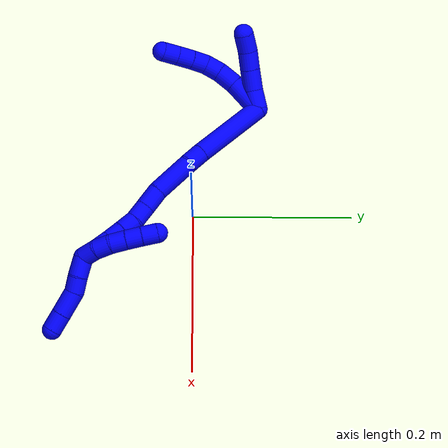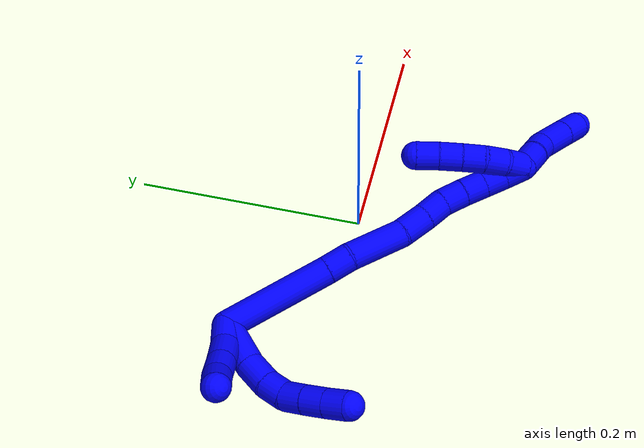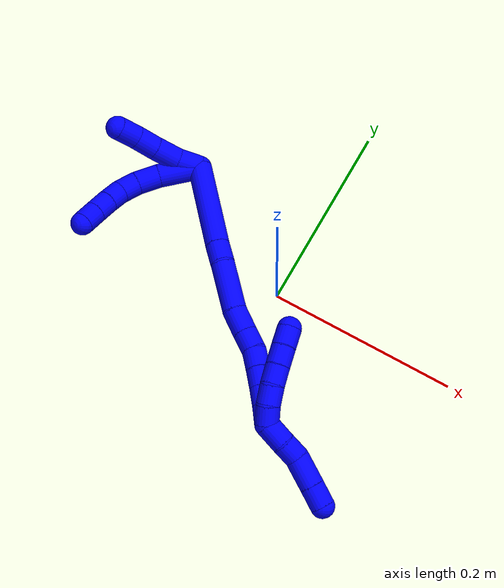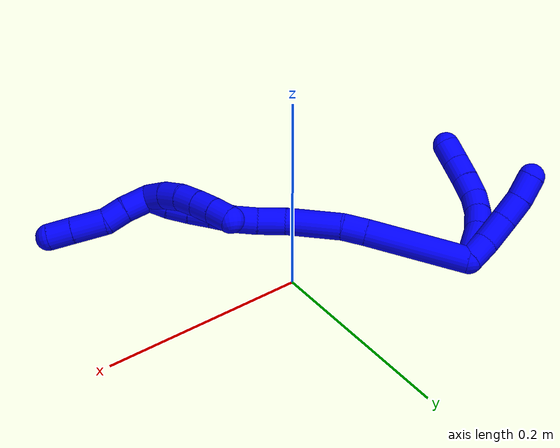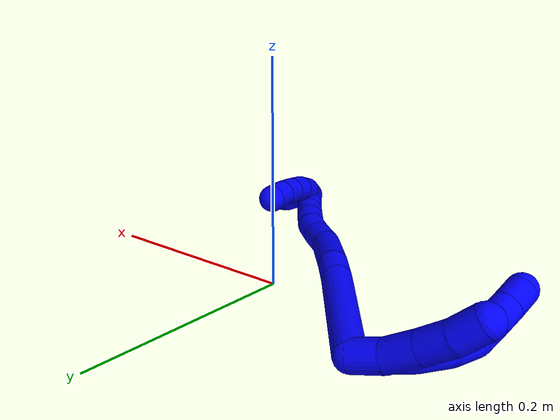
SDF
<sdf version="1.7">
 <world name="default">
  <model name="1">
   <static>0</static>
   <link name="1">
    <collision name="collision-cylinder-e_1_2_8">
     <pose>-0.015912 -0.004776 0.014608 0.316004 -0.802785 -0.135045</pose>
     <geometry><cylinder><radius>0.0125</radius><length>0.044245</length></cylinder></geometry>
     <surface>
      <friction><ode><mu>1.16</mu><mu2>1.16</mu2><slip1>0</slip1><slip2>0</slip2></ode></friction>
      <contact><ode><kp>1e+06</kp><kd>1</kd><max_vel>0</max_vel><min_depth>0.001</min_depth></ode></contact>
     </surface>
    </collision>
    <visual name="visual-cylinder-e_1_2_8">
     <pose>-0.015912 -0.004776 0.014608 0.316004 -0.802785 -0.135045</pose>
     <geometry><cylinder><radius>0.0125</radius><length>0.044245</length></cylinder></geometry>
     <material><ambient>0 0 1 1</ambient></material>
    </visual>
    <collision name="collision-cylinder-e_2_8_9">
     <pose>-0.03916 -0.013306 0.038534 0.382971 -0.630667 -0.126314</pose>
     <geometry><cylinder><radius>0.0125</radius><length>0.024878</length></cylinder></geometry>
     <surface>
      <friction><ode><mu>1.16</mu><mu2>1.16</mu2><slip1>0</slip1><slip2>0</slip2></ode></friction>
      <contact><ode><kp>1e+06</kp><kd>1</kd><max_vel>0</max_vel><min_depth>0.001</min_depth></ode></contact>
     </surface>
    </collision>
    <visual name="visual-cylinder-e_2_8_9">
     <pose>-0.03916 -0.013306 0.038534 0.382971 -0.630667 -0.126314</pose>
     <geometry><cylinder><radius>0.0125</radius><length>0.024878</length></cylinder></geometry>
     <material><ambient>0 0 1 1</ambient></material>
    </visual>
    <collision name="collision-cylinder-e_3_9_10">
     <pose>-0.05063 -0.020965 0.056376 0.429572 -0.415326 -0.091864</pose>
     <geometry><cylinder><radius>0.0125</radius><length>0.020494</length></cylinder></geometry>
     <surface>
      <friction><ode><mu>1.16</mu><mu2>1.16</mu2><slip1>0</slip1><slip2>0</slip2></ode></friction>
      <contact><ode><kp>1e+06</kp><kd>1</kd><max_vel>0</max_vel><min_depth>0.001</min_depth></ode></contact>
     </surface>
    </collision>
    <visual name="visual-cylinder-e_3_9_10">
     <pose>-0.05063 -0.020965 0.056376 0.429572 -0.415326 -0.091864</pose>
     <geometry><cylinder><radius>0.0125</radius><length>0.020494</length></cylinder></geometry>
     <material><ambient>0 0 1 1</ambient></material>
    </visual>
    <collision name="collision-cylinder-e_4_10_11">
     <pose>-0.055497 -0.028649 0.074183 0.386614 -0.072952 -0.014287</pose>
     <geometry><cylinder><radius>0.0125</radius><length>0.020099</length></cylinder></geometry>
     <surface>
      <friction><ode><mu>1.16</mu><mu2>1.16</mu2><slip1>0</slip1><slip2>0</slip2></ode></friction>
      <contact><ode><kp>1e+06</kp><kd>1</kd><max_vel>0</max_vel><min_depth>0.001</min_depth></ode></contact>
     </surface>
    </collision>
    <visual name="visual-cylinder-e_4_10_11">
     <pose>-0.055497 -0.028649 0.074183 0.386614 -0.072952 -0.014287</pose>
     <geometry><cylinder><radius>0.0125</radius><length>0.020099</length></cylinder></geometry>
     <material><ambient>0 0 1 1</ambient></material>
    </visual>
    <collision name="collision-cylinder-e_5_11_12">
     <pose>-0.056769 -0.036622 0.092645 0.42859 -0.053484 -0.011643</pose>
     <geometry><cylinder><radius>0.0125</radius><length>0.020213</length></cylinder></geometry>
     <surface>
      <friction><ode><mu>1.16</mu><mu2>1.16</mu2><slip1>0</slip1><slip2>0</slip2></ode></friction>
      <contact><ode><kp>1e+06</kp><kd>1</kd><max_vel>0</max_vel><min_depth>0.001</min_depth></ode></contact>
     </surface>
    </collision>
    <visual name="visual-cylinder-e_5_11_12">
     <pose>-0.056769 -0.036622 0.092645 0.42859 -0.053484 -0.011643</pose>
     <geometry><cylinder><radius>0.0125</radius><length>0.020213</length></cylinder></geometry>
     <material><ambient>0 0 1 1</ambient></material>
    </visual>
    <collision name="collision-cylinder-e_6_12_6">
     <pose>-0.057515 -0.04481 0.111029 0.409349 -0.020416 -0.004238</pose>
     <geometry><cylinder><radius>0.0125</radius><length>0.020071</length></cylinder></geometry>
     <surface>
      <friction><ode><mu>1.16</mu><mu2>1.16</mu2><slip1>0</slip1><slip2>0</slip2></ode></friction>
      <contact><ode><kp>1e+06</kp><kd>1</kd><max_vel>0</max_vel><min_depth>0.001</min_depth></ode></contact>
     </surface>
    </collision>
    <visual name="visual-cylinder-e_6_12_6">
     <pose>-0.057515 -0.04481 0.111029 0.409349 -0.020416 -0.004238</pose>
     <geometry><cylinder><radius>0.0125</radius><length>0.020071</length></cylinder></geometry>
     <material><ambient>0 0 1 1</ambient></material>
    </visual>
    <collision name="collision-cylinder-e_1_2_13">
     <pose>-0.009398 0.003687 0.007187 -0.473967 -0.860828 0.220874</pose>
     <geometry><cylinder><radius>0.0125</radius><length>0.024784</length></cylinder></geometry>
     <surface>
      <friction><ode><mu>1.16</mu><mu2>1.16</mu2><slip1>0</slip1><slip2>0</slip2></ode></friction>
      <contact><ode><kp>1e+06</kp><kd>1</kd><max_vel>0</max_vel><min_depth>0.001</min_depth></ode></contact>
     </surface>
    </collision>
    <visual name="visual-cylinder-e_1_2_13">
     <pose>-0.009398 0.003687 0.007187 -0.473967 -0.860828 0.220874</pose>
     <geometry><cylinder><radius>0.0125</radius><length>0.024784</length></cylinder></geometry>
     <material><ambient>0 0 1 1</ambient></material>
    </visual>
    <collision name="collision-cylinder-e_2_13_14">
     <pose>-0.026816 0.013936 0.02366 -0.615197 -0.614237 0.20083</pose>
     <geometry><cylinder><radius>0.0125</radius><length>0.02783</length></cylinder></geometry>
     <surface>
      <friction><ode><mu>1.16</mu><mu2>1.16</mu2><slip1>0</slip1><slip2>0</slip2></ode></friction>
      <contact><ode><kp>1e+06</kp><kd>1</kd><max_vel>0</max_vel><min_depth>0.001</min_depth></ode></contact>
     </surface>
    </collision>
    <visual name="visual-cylinder-e_2_13_14">
     <pose>-0.026816 0.013936 0.02366 -0.615197 -0.614237 0.20083</pose>
     <geometry><cylinder><radius>0.0125</radius><length>0.02783</length></cylinder></geometry>
     <material><ambient>0 0 1 1</ambient></material>
    </visual>
    <collision name="collision-cylinder-e_3_14_15">
     <pose>-0.04117 0.026561 0.041048 -0.642407 -0.559346 0.190539</pose>
     <geometry><cylinder><radius>0.0125</radius><length>0.023876</length></cylinder></geometry>
     <surface>
      <friction><ode><mu>1.16</mu><mu2>1.16</mu2><slip1>0</slip1><slip2>0</slip2></ode></friction>
      <contact><ode><kp>1e+06</kp><kd>1</kd><max_vel>0</max_vel><min_depth>0.001</min_depth></ode></contact>
     </surface>
    </collision>
    <visual name="visual-cylinder-e_3_14_15">
     <pose>-0.04117 0.026561 0.041048 -0.642407 -0.559346 0.190539</pose>
     <geometry><cylinder><radius>0.0125</radius><length>0.023876</length></cylinder></geometry>
     <material><ambient>0 0 1 1</ambient></material>
    </visual>
    <collision name="collision-cylinder-e_4_15_5">
     <pose>-0.052242 0.038118 0.058399 -0.536062 -0.414777 0.115447</pose>
     <geometry><cylinder><radius>0.0125</radius><length>0.02351</length></cylinder></geometry>
     <surface>
      <friction><ode><mu>1.16</mu><mu2>1.16</mu2><slip1>0</slip1><slip2>0</slip2></ode></friction>
      <contact><ode><kp>1e+06</kp><kd>1</kd><max_vel>0</max_vel><min_depth>0.001</min_depth></ode></contact>
     </surface>
    </collision>
    <visual name="visual-cylinder-e_4_15_5">
     <pose>-0.052242 0.038118 0.058399 -0.536062 -0.414777 0.115447</pose>
     <geometry><cylinder><radius>0.0125</radius><length>0.02351</length></cylinder></geometry>
     <material><ambient>0 0 1 1</ambient></material>
    </visual>
    <collision name="collision-cylinder-e_1_2_16">
     <pose>0.028837 -0.0329 0.020781 1.00742 0.637754 0.359967</pose>
     <geometry><cylinder><radius>0.0125</radius><length>0.096867</length></cylinder></geometry>
     <surface>
      <friction><ode><mu>1.16</mu><mu2>1.16</mu2><slip1>0</slip1><slip2>0</slip2></ode></friction>
      <contact><ode><kp>1e+06</kp><kd>1</kd><max_vel>0</max_vel><min_depth>0.001</min_depth></ode></contact>
     </surface>
    </collision>
    <visual name="visual-cylinder-e_1_2_16">
     <pose>0.028837 -0.0329 0.020781 1.00742 0.637754 0.359967</pose>
     <geometry><cylinder><radius>0.0125</radius><length>0.096867</length></cylinder></geometry>
     <material><ambient>0 0 1 1</ambient></material>
    </visual>
    <collision name="collision-cylinder-e_2_16_17">
     <pose>0.06464 -0.073272 0.046001 1.03483 0.675622 0.394644</pose>
     <geometry><cylinder><radius>0.0125</radius><length>0.022279</length></cylinder></geometry>
     <surface>
      <friction><ode><mu>1.16</mu><mu2>1.16</mu2><slip1>0</slip1><slip2>0</slip2></ode></friction>
      <contact><ode><kp>1e+06</kp><kd>1</kd><max_vel>0</max_vel><min_depth>0.001</min_depth></ode></contact>
     </surface>
    </collision>
    <visual name="visual-cylinder-e_2_16_17">
     <pose>0.06464 -0.073272 0.046001 1.03483 0.675622 0.394644</pose>
     <geometry><cylinder><radius>0.0125</radius><length>0.022279</length></cylinder></geometry>
     <material><ambient>0 0 1 1</ambient></material>
    </visual>
    <collision name="collision-cylinder-e_3_17_18">
     <pose>0.08564 -0.101373 0.057855 1.22573 0.569464 0.40596</pose>
     <geometry><cylinder><radius>0.0125</radius><length>0.052054</length></cylinder></geometry>
     <surface>
      <friction><ode><mu>1.16</mu><mu2>1.16</mu2><slip1>0</slip1><slip2>0</slip2></ode></friction>
      <contact><ode><kp>1e+06</kp><kd>1</kd><max_vel>0</max_vel><min_depth>0.001</min_depth></ode></contact>
     </surface>
    </collision>
    <visual name="visual-cylinder-e_3_17_18">
     <pose>0.08564 -0.101373 0.057855 1.22573 0.569464 0.40596</pose>
     <geometry><cylinder><radius>0.0125</radius><length>0.052054</length></cylinder></geometry>
     <material><ambient>0 0 1 1</ambient></material>
    </visual>
    <collision name="collision-cylinder-e_4_18_19">
     <pose>0.108608 -0.131469 0.067616 1.32785 0.741528 0.590535</pose>
     <geometry><cylinder><radius>0.0125</radius><length>0.026456</length></cylinder></geometry>
     <surface>
      <friction><ode><mu>1.16</mu><mu2>1.16</mu2><slip1>0</slip1><slip2>0</slip2></ode></friction>
      <contact><ode><kp>1e+06</kp><kd>1</kd><max_vel>0</max_vel><min_depth>0.001</min_depth></ode></contact>
     </surface>
    </collision>
    <visual name="visual-cylinder-e_4_18_19">
     <pose>0.108608 -0.131469 0.067616 1.32785 0.741528 0.590535</pose>
     <geometry><cylinder><radius>0.0125</radius><length>0.026456</length></cylinder></geometry>
     <material><ambient>0 0 1 1</ambient></material>
    </visual>
    <collision name="collision-cylinder-e_5_19_20">
     <pose>0.125314 -0.147959 0.072515 1.22204 0.805138 0.579727</pose>
     <geometry><cylinder><radius>0.0125</radius><length>0.021561</length></cylinder></geometry>
     <surface>
      <friction><ode><mu>1.16</mu><mu2>1.16</mu2><slip1>0</slip1><slip2>0</slip2></ode></friction>
      <contact><ode><kp>1e+06</kp><kd>1</kd><max_vel>0</max_vel><min_depth>0.001</min_depth></ode></contact>
     </surface>
    </collision>
    <visual name="visual-cylinder-e_5_19_20">
     <pose>0.125314 -0.147959 0.072515 1.22204 0.805138 0.579727</pose>
     <geometry><cylinder><radius>0.0125</radius><length>0.021561</length></cylinder></geometry>
     <material><ambient>0 0 1 1</ambient></material>
    </visual>
    <collision name="collision-cylinder-e_6_20_21">
     <pose>0.138848 -0.162497 0.07902 1.08675 0.596194 0.367002</pose>
     <geometry><cylinder><radius>0.0125</radius><length>0.020525</length></cylinder></geometry>
     <surface>
      <friction><ode><mu>1.16</mu><mu2>1.16</mu2><slip1>0</slip1><slip2>0</slip2></ode></friction>
      <contact><ode><kp>1e+06</kp><kd>1</kd><max_vel>0</max_vel><min_depth>0.001</min_depth></ode></contact>
     </surface>
    </collision>
    <visual name="visual-cylinder-e_6_20_21">
     <pose>0.138848 -0.162497 0.07902 1.08675 0.596194 0.367002</pose>
     <geometry><cylinder><radius>0.0125</radius><length>0.020525</length></cylinder></geometry>
     <material><ambient>0 0 1 1</ambient></material>
    </visual>
    <collision name="collision-cylinder-e_7_21_22">
     <pose>0.14989 -0.177762 0.086707 1.12165 0.550464 0.351096</pose>
     <geometry><cylinder><radius>0.0125</radius><length>0.020186</length></cylinder></geometry>
     <surface>
      <friction><ode><mu>1.16</mu><mu2>1.16</mu2><slip1>0</slip1><slip2>0</slip2></ode></friction>
      <contact><ode><kp>1e+06</kp><kd>1</kd><max_vel>0</max_vel><min_depth>0.001</min_depth></ode></contact>
     </surface>
    </collision>
    <visual name="visual-cylinder-e_7_21_22">
     <pose>0.14989 -0.177762 0.086707 1.12165 0.550464 0.351096</pose>
     <geometry><cylinder><radius>0.0125</radius><length>0.020186</length></cylinder></geometry>
     <material><ambient>0 0 1 1</ambient></material>
    </visual>
    <collision name="collision-cylinder-e_8_22_23">
     <pose>0.160383 -0.192991 0.094571 1.06647 0.547936 0.328779</pose>
     <geometry><cylinder><radius>0.0125</radius><length>0.020018</length></cylinder></geometry>
     <surface>
      <friction><ode><mu>1.16</mu><mu2>1.16</mu2><slip1>0</slip1><slip2>0</slip2></ode></friction>
      <contact><ode><kp>1e+06</kp><kd>1</kd><max_vel>0</max_vel><min_depth>0.001</min_depth></ode></contact>
     </surface>
    </collision>
    <visual name="visual-cylinder-e_8_22_23">
     <pose>0.160383 -0.192991 0.094571 1.06647 0.547936 0.328779</pose>
     <geometry><cylinder><radius>0.0125</radius><length>0.020018</length></cylinder></geometry>
     <material><ambient>0 0 1 1</ambient></material>
    </visual>
    <collision name="collision-cylinder-e_9_23_1">
     <pose>0.170892 -0.207261 0.103837 0.923031 0.556261 0.282125</pose>
     <geometry><cylinder><radius>0.0125</radius><length>0.020055</length></cylinder></geometry>
     <surface>
      <friction><ode><mu>1.16</mu><mu2>1.16</mu2><slip1>0</slip1><slip2>0</slip2></ode></friction>
      <contact><ode><kp>1e+06</kp><kd>1</kd><max_vel>0</max_vel><min_depth>0.001</min_depth></ode></contact>
     </surface>
    </collision>
    <visual name="visual-cylinder-e_9_23_1">
     <pose>0.170892 -0.207261 0.103837 0.923031 0.556261 0.282125</pose>
     <geometry><cylinder><radius>0.0125</radius><length>0.020055</length></cylinder></geometry>
     <material><ambient>0 0 1 1</ambient></material>
    </visual>
    <collision name="collision-cylinder-e_1_1_24">
     <pose>0.184296 -0.22275 0.105665 1.93451 0.716797 0.995487</pose>
     <geometry><cylinder><radius>0.0125</radius><length>0.024689</length></cylinder></geometry>
     <surface>
      <friction><ode><mu>1.16</mu><mu2>1.16</mu2><slip1>0</slip1><slip2>0</slip2></ode></friction>
      <contact><ode><kp>1e+06</kp><kd>1</kd><max_vel>0</max_vel><min_depth>0.001</min_depth></ode></contact>
     </surface>
    </collision>
    <visual name="visual-cylinder-e_1_1_24">
     <pose>0.184296 -0.22275 0.105665 1.93451 0.716797 0.995487</pose>
     <geometry><cylinder><radius>0.0125</radius><length>0.024689</length></cylinder></geometry>
     <material><ambient>0 0 1 1</ambient></material>
    </visual>
    <collision name="collision-cylinder-e_2_24_25">
     <pose>0.198352 -0.238749 0.098493 2.05725 0.623964 0.983121</pose>
     <geometry><cylinder><radius>0.0125</radius><length>0.020355</length></cylinder></geometry>
     <surface>
      <friction><ode><mu>1.16</mu><mu2>1.16</mu2><slip1>0</slip1><slip2>0</slip2></ode></friction>
      <contact><ode><kp>1e+06</kp><kd>1</kd><max_vel>0</max_vel><min_depth>0.001</min_depth></ode></contact>
     </surface>
    </collision>
    <visual name="visual-cylinder-e_2_24_25">
     <pose>0.198352 -0.238749 0.098493 2.05725 0.623964 0.983121</pose>
     <geometry><cylinder><radius>0.0125</radius><length>0.020355</length></cylinder></geometry>
     <material><ambient>0 0 1 1</ambient></material>
    </visual>
    <collision name="collision-cylinder-e_3_25_26">
     <pose>0.213291 -0.259087 0.093439 1.66203 0.601919 0.655623</pose>
     <geometry><cylinder><radius>0.0125</radius><length>0.031764</length></cylinder></geometry>
     <surface>
      <friction><ode><mu>1.16</mu><mu2>1.16</mu2><slip1>0</slip1><slip2>0</slip2></ode></friction>
      <contact><ode><kp>1e+06</kp><kd>1</kd><max_vel>0</max_vel><min_depth>0.001</min_depth></ode></contact>
     </surface>
    </collision>
    <visual name="visual-cylinder-e_3_25_26">
     <pose>0.213291 -0.259087 0.093439 1.66203 0.601919 0.655623</pose>
     <geometry><cylinder><radius>0.0125</radius><length>0.031764</length></cylinder></geometry>
     <material><ambient>0 0 1 1</ambient></material>
    </visual>
    <collision name="collision-cylinder-e_4_26_4">
     <pose>0.228702 -0.281738 0.091339 1.6649 0.586528 0.640763</pose>
     <geometry><cylinder><radius>0.0125</radius><length>0.023192</length></cylinder></geometry>
     <surface>
      <friction><ode><mu>1.16</mu><mu2>1.16</mu2><slip1>0</slip1><slip2>0</slip2></ode></friction>
      <contact><ode><kp>1e+06</kp><kd>1</kd><max_vel>0</max_vel><min_depth>0.001</min_depth></ode></contact>
     </surface>
    </collision>
    <visual name="visual-cylinder-e_4_26_4">
     <pose>0.228702 -0.281738 0.091339 1.6649 0.586528 0.640763</pose>
     <geometry><cylinder><radius>0.0125</radius><length>0.023192</length></cylinder></geometry>
     <material><ambient>0 0 1 1</ambient></material>
    </visual>
    <collision name="collision-cylinder-e_1_1_27">
     <pose>0.175727 -0.204126 0.107846 -1.6841 -0.045977 0.051503</pose>
     <geometry><cylinder><radius>0.0125</radius><length>0.02</length></cylinder></geometry>
     <surface>
      <friction><ode><mu>1.16</mu><mu2>1.16</mu2><slip1>0</slip1><slip2>0</slip2></ode></friction>
      <contact><ode><kp>1e+06</kp><kd>1</kd><max_vel>0</max_vel><min_depth>0.001</min_depth></ode></contact>
     </surface>
    </collision>
    <visual name="visual-cylinder-e_1_1_27">
     <pose>0.175727 -0.204126 0.107846 -1.6841 -0.045977 0.051503</pose>
     <geometry><cylinder><radius>0.0125</radius><length>0.02</length></cylinder></geometry>
     <material><ambient>0 0 1 1</ambient></material>
    </visual>
    <collision name="collision-cylinder-e_2_27_28">
     <pose>0.174944 -0.184752 0.103458 -1.9029 -0.032357 0.045382</pose>
     <geometry><cylinder><radius>0.0125</radius><length>0.02</length></cylinder></geometry>
     <surface>
      <friction><ode><mu>1.16</mu><mu2>1.16</mu2><slip1>0</slip1><slip2>0</slip2></ode></friction>
      <contact><ode><kp>1e+06</kp><kd>1</kd><max_vel>0</max_vel><min_depth>0.001</min_depth></ode></contact>
     </surface>
    </collision>
    <visual name="visual-cylinder-e_2_27_28">
     <pose>0.174944 -0.184752 0.103458 -1.9029 -0.032357 0.045382</pose>
     <geometry><cylinder><radius>0.0125</radius><length>0.02</length></cylinder></geometry>
     <material><ambient>0 0 1 1</ambient></material>
    </visual>
    <collision name="collision-cylinder-e_3_28_29">
     <pose>0.173962 -0.166655 0.095224 -2.09288 -0.065865 0.113801</pose>
     <geometry><cylinder><radius>0.0125</radius><length>0.02</length></cylinder></geometry>
     <surface>
      <friction><ode><mu>1.16</mu><mu2>1.16</mu2><slip1>0</slip1><slip2>0</slip2></ode></friction>
      <contact><ode><kp>1e+06</kp><kd>1</kd><max_vel>0</max_vel><min_depth>0.001</min_depth></ode></contact>
     </surface>
    </collision>
    <visual name="visual-cylinder-e_3_28_29">
     <pose>0.173962 -0.166655 0.095224 -2.09288 -0.065865 0.113801</pose>
     <geometry><cylinder><radius>0.0125</radius><length>0.02</length></cylinder></geometry>
     <material><ambient>0 0 1 1</ambient></material>
    </visual>
    <collision name="collision-cylinder-e_4_29_30">
     <pose>0.172545 -0.149632 0.084833 -2.14477 -0.075924 0.139345</pose>
     <geometry><cylinder><radius>0.0125</radius><length>0.02</length></cylinder></geometry>
     <surface>
      <friction><ode><mu>1.16</mu><mu2>1.16</mu2><slip1>0</slip1><slip2>0</slip2></ode></friction>
      <contact><ode><kp>1e+06</kp><kd>1</kd><max_vel>0</max_vel><min_depth>0.001</min_depth></ode></contact>
     </surface>
    </collision>
    <visual name="visual-cylinder-e_4_29_30">
     <pose>0.172545 -0.149632 0.084833 -2.14477 -0.075924 0.139345</pose>
     <geometry><cylinder><radius>0.0125</radius><length>0.02</length></cylinder></geometry>
     <material><ambient>0 0 1 1</ambient></material>
    </visual>
    <collision name="collision-cylinder-e_5_30_3">
     <pose>0.170691 -0.133307 0.073456 -2.21421 -0.109799 0.218915</pose>
     <geometry><cylinder><radius>0.0125</radius><length>0.02</length></cylinder></geometry>
     <surface>
      <friction><ode><mu>1.16</mu><mu2>1.16</mu2><slip1>0</slip1><slip2>0</slip2></ode></friction>
      <contact><ode><kp>1e+06</kp><kd>1</kd><max_vel>0</max_vel><min_depth>0.001</min_depth></ode></contact>
     </surface>
    </collision>
    <visual name="visual-cylinder-e_5_30_3">
     <pose>0.170691 -0.133307 0.073456 -2.21421 -0.109799 0.218915</pose>
     <geometry><cylinder><radius>0.0125</radius><length>0.02</length></cylinder></geometry>
     <material><ambient>0 0 1 1</ambient></material>
    </visual>
    <collision name="collision-sphere-3">
     <pose>0.169595 -0.125354 0.067493 0 -0 0</pose>
     <geometry><sphere><radius>0.0125</radius></sphere></geometry>
     <surface>
      <friction><ode><mu>1.16</mu><mu2>1.16</mu2><slip1>0</slip1><slip2>0</slip2></ode></friction>
      <contact><ode><kp>1e+06</kp><kd>1</kd><max_vel>0</max_vel><min_depth>0.001</min_depth></ode></contact>
     </surface>
    </collision>
    <visual name="visual-sphere-3">
     <pose>0.169595 -0.125354 0.067493 0 -0 0</pose>
     <geometry><sphere><radius>0.0125</radius></sphere></geometry>
     <material><ambient>0 0 1 1</ambient></material>
    </visual>
    <collision name="collision-sphere-30">
     <pose>0.171787 -0.141259 0.079419 0 -0 0</pose>
     <geometry><sphere><radius>0.0125</radius></sphere></geometry>
     <surface>
      <friction><ode><mu>1.16</mu><mu2>1.16</mu2><slip1>0</slip1><slip2>0</slip2></ode></friction>
      <contact><ode><kp>1e+06</kp><kd>1</kd><max_vel>0</max_vel><min_depth>0.001</min_depth></ode></contact>
     </surface>
    </collision>
    <visual name="visual-sphere-30">
     <pose>0.171787 -0.141259 0.079419 0 -0 0</pose>
     <geometry><sphere><radius>0.0125</radius></sphere></geometry>
     <material><ambient>0 0 1 1</ambient></material>
    </visual>
    <collision name="collision-sphere-29">
     <pose>0.173304 -0.158006 0.090248 0 -0 0</pose>
     <geometry><sphere><radius>0.0125</radius></sphere></geometry>
     <surface>
      <friction><ode><mu>1.16</mu><mu2>1.16</mu2><slip1>0</slip1><slip2>0</slip2></ode></friction>
      <contact><ode><kp>1e+06</kp><kd>1</kd><max_vel>0</max_vel><min_depth>0.001</min_depth></ode></contact>
     </surface>
    </collision>
    <visual name="visual-sphere-29">
     <pose>0.173304 -0.158006 0.090248 0 -0 0</pose>
     <geometry><sphere><radius>0.0125</radius></sphere></geometry>
     <material><ambient>0 0 1 1</ambient></material>
    </visual>
    <collision name="collision-sphere-28">
     <pose>0.17462 -0.175304 0.1002 0 -0 0</pose>
     <geometry><sphere><radius>0.0125</radius></sphere></geometry>
     <surface>
      <friction><ode><mu>1.16</mu><mu2>1.16</mu2><slip1>0</slip1><slip2>0</slip2></ode></friction>
      <contact><ode><kp>1e+06</kp><kd>1</kd><max_vel>0</max_vel><min_depth>0.001</min_depth></ode></contact>
     </surface>
    </collision>
    <visual name="visual-sphere-28">
     <pose>0.17462 -0.175304 0.1002 0 -0 0</pose>
     <geometry><sphere><radius>0.0125</radius></sphere></geometry>
     <material><ambient>0 0 1 1</ambient></material>
    </visual>
    <collision name="collision-sphere-27">
     <pose>0.175267 -0.194201 0.106717 0 -0 0</pose>
     <geometry><sphere><radius>0.0125</radius></sphere></geometry>
     <surface>
      <friction><ode><mu>1.16</mu><mu2>1.16</mu2><slip1>0</slip1><slip2>0</slip2></ode></friction>
      <contact><ode><kp>1e+06</kp><kd>1</kd><max_vel>0</max_vel><min_depth>0.001</min_depth></ode></contact>
     </surface>
    </collision>
    <visual name="visual-sphere-27">
     <pose>0.175267 -0.194201 0.106717 0 -0 0</pose>
     <geometry><sphere><radius>0.0125</radius></sphere></geometry>
     <material><ambient>0 0 1 1</ambient></material>
    </visual>
    <collision name="collision-sphere-4">
     <pose>0.235121 -0.291354 0.090431 0 -0 0</pose>
     <geometry><sphere><radius>0.0125</radius></sphere></geometry>
     <surface>
      <friction><ode><mu>1.16</mu><mu2>1.16</mu2><slip1>0</slip1><slip2>0</slip2></ode></friction>
      <contact><ode><kp>1e+06</kp><kd>1</kd><max_vel>0</max_vel><min_depth>0.001</min_depth></ode></contact>
     </surface>
    </collision>
    <visual name="visual-sphere-4">
     <pose>0.235121 -0.291354 0.090431 0 -0 0</pose>
     <geometry><sphere><radius>0.0125</radius></sphere></geometry>
     <material><ambient>0 0 1 1</ambient></material>
    </visual>
    <collision name="collision-sphere-26">
     <pose>0.222284 -0.272123 0.092246 0 -0 0</pose>
     <geometry><sphere><radius>0.0125</radius></sphere></geometry>
     <surface>
      <friction><ode><mu>1.16</mu><mu2>1.16</mu2><slip1>0</slip1><slip2>0</slip2></ode></friction>
      <contact><ode><kp>1e+06</kp><kd>1</kd><max_vel>0</max_vel><min_depth>0.001</min_depth></ode></contact>
     </surface>
    </collision>
    <visual name="visual-sphere-26">
     <pose>0.222284 -0.272123 0.092246 0 -0 0</pose>
     <geometry><sphere><radius>0.0125</radius></sphere></geometry>
     <material><ambient>0 0 1 1</ambient></material>
    </visual>
    <collision name="collision-sphere-25">
     <pose>0.204298 -0.24605 0.094632 0 -0 0</pose>
     <geometry><sphere><radius>0.0125</radius></sphere></geometry>
     <surface>
      <friction><ode><mu>1.16</mu><mu2>1.16</mu2><slip1>0</slip1><slip2>0</slip2></ode></friction>
      <contact><ode><kp>1e+06</kp><kd>1</kd><max_vel>0</max_vel><min_depth>0.001</min_depth></ode></contact>
     </surface>
    </collision>
    <visual name="visual-sphere-25">
     <pose>0.204298 -0.24605 0.094632 0 -0 0</pose>
     <geometry><sphere><radius>0.0125</radius></sphere></geometry>
     <material><ambient>0 0 1 1</ambient></material>
    </visual>
    <collision name="collision-sphere-24">
     <pose>0.192406 -0.231447 0.102354 0 -0 0</pose>
     <geometry><sphere><radius>0.0125</radius></sphere></geometry>
     <surface>
      <friction><ode><mu>1.16</mu><mu2>1.16</mu2><slip1>0</slip1><slip2>0</slip2></ode></friction>
      <contact><ode><kp>1e+06</kp><kd>1</kd><max_vel>0</max_vel><min_depth>0.001</min_depth></ode></contact>
     </surface>
    </collision>
    <visual name="visual-sphere-24">
     <pose>0.192406 -0.231447 0.102354 0 -0 0</pose>
     <geometry><sphere><radius>0.0125</radius></sphere></geometry>
     <material><ambient>0 0 1 1</ambient></material>
    </visual>
    <collision name="collision-sphere-1">
     <pose>0.176186 -0.214052 0.108976 0 -0 0</pose>
     <geometry><sphere><radius>0.0125</radius></sphere></geometry>
     <surface>
      <friction><ode><mu>1.16</mu><mu2>1.16</mu2><slip1>0</slip1><slip2>0</slip2></ode></friction>
      <contact><ode><kp>1e+06</kp><kd>1</kd><max_vel>0</max_vel><min_depth>0.001</min_depth></ode></contact>
     </surface>
    </collision>
    <visual name="visual-sphere-1">
     <pose>0.176186 -0.214052 0.108976 0 -0 0</pose>
     <geometry><sphere><radius>0.0125</radius></sphere></geometry>
     <material><ambient>0 0 1 1</ambient></material>
    </visual>
    <collision name="collision-sphere-23">
     <pose>0.165597 -0.200471 0.098699 0 -0 0</pose>
     <geometry><sphere><radius>0.0125</radius></sphere></geometry>
     <surface>
      <friction><ode><mu>1.16</mu><mu2>1.16</mu2><slip1>0</slip1><slip2>0</slip2></ode></friction>
      <contact><ode><kp>1e+06</kp><kd>1</kd><max_vel>0</max_vel><min_depth>0.001</min_depth></ode></contact>
     </surface>
    </collision>
    <visual name="visual-sphere-23">
     <pose>0.165597 -0.200471 0.098699 0 -0 0</pose>
     <geometry><sphere><radius>0.0125</radius></sphere></geometry>
     <material><ambient>0 0 1 1</ambient></material>
    </visual>
    <collision name="collision-sphere-22">
     <pose>0.155169 -0.185511 0.090442 0 -0 0</pose>
     <geometry><sphere><radius>0.0125</radius></sphere></geometry>
     <surface>
      <friction><ode><mu>1.16</mu><mu2>1.16</mu2><slip1>0</slip1><slip2>0</slip2></ode></friction>
      <contact><ode><kp>1e+06</kp><kd>1</kd><max_vel>0</max_vel><min_depth>0.001</min_depth></ode></contact>
     </surface>
    </collision>
    <visual name="visual-sphere-22">
     <pose>0.155169 -0.185511 0.090442 0 -0 0</pose>
     <geometry><sphere><radius>0.0125</radius></sphere></geometry>
     <material><ambient>0 0 1 1</ambient></material>
    </visual>
    <collision name="collision-sphere-21">
     <pose>0.14461 -0.170013 0.082972 0 -0 0</pose>
     <geometry><sphere><radius>0.0125</radius></sphere></geometry>
     <surface>
      <friction><ode><mu>1.16</mu><mu2>1.16</mu2><slip1>0</slip1><slip2>0</slip2></ode></friction>
      <contact><ode><kp>1e+06</kp><kd>1</kd><max_vel>0</max_vel><min_depth>0.001</min_depth></ode></contact>
     </surface>
    </collision>
    <visual name="visual-sphere-21">
     <pose>0.14461 -0.170013 0.082972 0 -0 0</pose>
     <geometry><sphere><radius>0.0125</radius></sphere></geometry>
     <material><ambient>0 0 1 1</ambient></material>
    </visual>
    <collision name="collision-sphere-12">
     <pose>-0.05731 -0.040817 0.101825 0 -0 0</pose>
     <geometry><sphere><radius>0.0125</radius></sphere></geometry>
     <surface>
      <friction><ode><mu>1.16</mu><mu2>1.16</mu2><slip1>0</slip1><slip2>0</slip2></ode></friction>
      <contact><ode><kp>1e+06</kp><kd>1</kd><max_vel>0</max_vel><min_depth>0.001</min_depth></ode></contact>
     </surface>
    </collision>
    <visual name="visual-sphere-12">
     <pose>-0.05731 -0.040817 0.101825 0 -0 0</pose>
     <geometry><sphere><radius>0.0125</radius></sphere></geometry>
     <material><ambient>0 0 1 1</ambient></material>
    </visual>
    <collision name="collision-sphere-11">
     <pose>-0.056229 -0.032428 0.083466 0 -0 0</pose>
     <geometry><sphere><radius>0.0125</radius></sphere></geometry>
     <surface>
      <friction><ode><mu>1.16</mu><mu2>1.16</mu2><slip1>0</slip1><slip2>0</slip2></ode></friction>
      <contact><ode><kp>1e+06</kp><kd>1</kd><max_vel>0</max_vel><min_depth>0.001</min_depth></ode></contact>
     </surface>
    </collision>
    <visual name="visual-sphere-11">
     <pose>-0.056229 -0.032428 0.083466 0 -0 0</pose>
     <geometry><sphere><radius>0.0125</radius></sphere></geometry>
     <material><ambient>0 0 1 1</ambient></material>
    </visual>
    <collision name="collision-sphere-10">
     <pose>-0.054764 -0.02487 0.0649 0 -0 0</pose>
     <geometry><sphere><radius>0.0125</radius></sphere></geometry>
     <surface>
      <friction><ode><mu>1.16</mu><mu2>1.16</mu2><slip1>0</slip1><slip2>0</slip2></ode></friction>
      <contact><ode><kp>1e+06</kp><kd>1</kd><max_vel>0</max_vel><min_depth>0.001</min_depth></ode></contact>
     </surface>
    </collision>
    <visual name="visual-sphere-10">
     <pose>-0.054764 -0.02487 0.0649 0 -0 0</pose>
     <geometry><sphere><radius>0.0125</radius></sphere></geometry>
     <material><ambient>0 0 1 1</ambient></material>
    </visual>
    <collision name="collision-sphere-9">
     <pose>-0.046495 -0.01706 0.047852 0 -0 0</pose>
     <geometry><sphere><radius>0.0125</radius></sphere></geometry>
     <surface>
      <friction><ode><mu>1.16</mu><mu2>1.16</mu2><slip1>0</slip1><slip2>0</slip2></ode></friction>
      <contact><ode><kp>1e+06</kp><kd>1</kd><max_vel>0</max_vel><min_depth>0.001</min_depth></ode></contact>
     </surface>
    </collision>
    <visual name="visual-sphere-9">
     <pose>-0.046495 -0.01706 0.047852 0 -0 0</pose>
     <geometry><sphere><radius>0.0125</radius></sphere></geometry>
     <material><ambient>0 0 1 1</ambient></material>
    </visual>
    <collision name="collision-sphere-2">
     <geometry><sphere><radius>0.0125</radius></sphere></geometry>
     <surface>
      <friction><ode><mu>1.16</mu><mu2>1.16</mu2><slip1>0</slip1><slip2>0</slip2></ode></friction>
      <contact><ode><kp>1e+06</kp><kd>1</kd><max_vel>0</max_vel><min_depth>0.001</min_depth></ode></contact>
     </surface>
    </collision>
    <visual name="visual-sphere-2">
     <geometry><sphere><radius>0.0125</radius></sphere></geometry>
     <material><ambient>0 0 1 1</ambient></material>
    </visual>
    <collision name="collision-sphere-19">
     <pose>0.117542 -0.140938 0.069962 0 -0 0</pose>
     <geometry><sphere><radius>0.0125</radius></sphere></geometry>
     <surface>
      <friction><ode><mu>1.16</mu><mu2>1.16</mu2><slip1>0</slip1><slip2>0</slip2></ode></friction>
      <contact><ode><kp>1e+06</kp><kd>1</kd><max_vel>0</max_vel><min_depth>0.001</min_depth></ode></contact>
     </surface>
    </collision>
    <visual name="visual-sphere-19">
     <pose>0.117542 -0.140938 0.069962 0 -0 0</pose>
     <geometry><sphere><radius>0.0125</radius></sphere></geometry>
     <material><ambient>0 0 1 1</ambient></material>
    </visual>
    <collision name="collision-sphere-8">
     <pose>-0.031825 -0.009552 0.029215 0 -0 0</pose>
     <geometry><sphere><radius>0.0125</radius></sphere></geometry>
     <surface>
      <friction><ode><mu>1.16</mu><mu2>1.16</mu2><slip1>0</slip1><slip2>0</slip2></ode></friction>
      <contact><ode><kp>1e+06</kp><kd>1</kd><max_vel>0</max_vel><min_depth>0.001</min_depth></ode></contact>
     </surface>
    </collision>
    <visual name="visual-sphere-8">
     <pose>-0.031825 -0.009552 0.029215 0 -0 0</pose>
     <geometry><sphere><radius>0.0125</radius></sphere></geometry>
     <material><ambient>0 0 1 1</ambient></material>
    </visual>
    <collision name="collision-sphere-6">
     <pose>-0.057719 -0.048803 0.120234 0 -0 0</pose>
     <geometry><sphere><radius>0.0125</radius></sphere></geometry>
     <surface>
      <friction><ode><mu>1.16</mu><mu2>1.16</mu2><slip1>0</slip1><slip2>0</slip2></ode></friction>
      <contact><ode><kp>1e+06</kp><kd>1</kd><max_vel>0</max_vel><min_depth>0.001</min_depth></ode></contact>
     </surface>
    </collision>
    <visual name="visual-sphere-6">
     <pose>-0.057719 -0.048803 0.120234 0 -0 0</pose>
     <geometry><sphere><radius>0.0125</radius></sphere></geometry>
     <material><ambient>0 0 1 1</ambient></material>
    </visual>
    <collision name="collision-sphere-13">
     <pose>-0.018796 0.007373 0.014374 0 -0 0</pose>
     <geometry><sphere><radius>0.0125</radius></sphere></geometry>
     <surface>
      <friction><ode><mu>1.16</mu><mu2>1.16</mu2><slip1>0</slip1><slip2>0</slip2></ode></friction>
      <contact><ode><kp>1e+06</kp><kd>1</kd><max_vel>0</max_vel><min_depth>0.001</min_depth></ode></contact>
     </surface>
    </collision>
    <visual name="visual-sphere-13">
     <pose>-0.018796 0.007373 0.014374 0 -0 0</pose>
     <geometry><sphere><radius>0.0125</radius></sphere></geometry>
     <material><ambient>0 0 1 1</ambient></material>
    </visual>
    <collision name="collision-sphere-14">
     <pose>-0.034835 0.020499 0.032947 0 -0 0</pose>
     <geometry><sphere><radius>0.0125</radius></sphere></geometry>
     <surface>
      <friction><ode><mu>1.16</mu><mu2>1.16</mu2><slip1>0</slip1><slip2>0</slip2></ode></friction>
      <contact><ode><kp>1e+06</kp><kd>1</kd><max_vel>0</max_vel><min_depth>0.001</min_depth></ode></contact>
     </surface>
    </collision>
    <visual name="visual-sphere-14">
     <pose>-0.034835 0.020499 0.032947 0 -0 0</pose>
     <geometry><sphere><radius>0.0125</radius></sphere></geometry>
     <material><ambient>0 0 1 1</ambient></material>
    </visual>
    <collision name="collision-sphere-15">
     <pose>-0.047504 0.032623 0.04915 0 -0 0</pose>
     <geometry><sphere><radius>0.0125</radius></sphere></geometry>
     <surface>
      <friction><ode><mu>1.16</mu><mu2>1.16</mu2><slip1>0</slip1><slip2>0</slip2></ode></friction>
      <contact><ode><kp>1e+06</kp><kd>1</kd><max_vel>0</max_vel><min_depth>0.001</min_depth></ode></contact>
     </surface>
    </collision>
    <visual name="visual-sphere-15">
     <pose>-0.047504 0.032623 0.04915 0 -0 0</pose>
     <geometry><sphere><radius>0.0125</radius></sphere></geometry>
     <material><ambient>0 0 1 1</ambient></material>
    </visual>
    <collision name="collision-sphere-5">
     <pose>-0.056979 0.043613 0.067648 0 -0 0</pose>
     <geometry><sphere><radius>0.0125</radius></sphere></geometry>
     <surface>
      <friction><ode><mu>1.16</mu><mu2>1.16</mu2><slip1>0</slip1><slip2>0</slip2></ode></friction>
      <contact><ode><kp>1e+06</kp><kd>1</kd><max_vel>0</max_vel><min_depth>0.001</min_depth></ode></contact>
     </surface>
    </collision>
    <visual name="visual-sphere-5">
     <pose>-0.056979 0.043613 0.067648 0 -0 0</pose>
     <geometry><sphere><radius>0.0125</radius></sphere></geometry>
     <material><ambient>0 0 1 1</ambient></material>
    </visual>
    <collision name="collision-sphere-16">
     <pose>0.057674 -0.065799 0.041563 0 -0 0</pose>
     <geometry><sphere><radius>0.0125</radius></sphere></geometry>
     <surface>
      <friction><ode><mu>1.16</mu><mu2>1.16</mu2><slip1>0</slip1><slip2>0</slip2></ode></friction>
      <contact><ode><kp>1e+06</kp><kd>1</kd><max_vel>0</max_vel><min_depth>0.001</min_depth></ode></contact>
     </surface>
    </collision>
    <visual name="visual-sphere-16">
     <pose>0.057674 -0.065799 0.041563 0 -0 0</pose>
     <geometry><sphere><radius>0.0125</radius></sphere></geometry>
     <material><ambient>0 0 1 1</ambient></material>
    </visual>
    <collision name="collision-sphere-17">
     <pose>0.071607 -0.080746 0.05044 0 -0 0</pose>
     <geometry><sphere><radius>0.0125</radius></sphere></geometry>
     <surface>
      <friction><ode><mu>1.16</mu><mu2>1.16</mu2><slip1>0</slip1><slip2>0</slip2></ode></friction>
      <contact><ode><kp>1e+06</kp><kd>1</kd><max_vel>0</max_vel><min_depth>0.001</min_depth></ode></contact>
     </surface>
    </collision>
    <visual name="visual-sphere-17">
     <pose>0.071607 -0.080746 0.05044 0 -0 0</pose>
     <geometry><sphere><radius>0.0125</radius></sphere></geometry>
     <material><ambient>0 0 1 1</ambient></material>
    </visual>
    <collision name="collision-sphere-18">
     <pose>0.099673 -0.122001 0.065269 0 -0 0</pose>
     <geometry><sphere><radius>0.0125</radius></sphere></geometry>
     <surface>
      <friction><ode><mu>1.16</mu><mu2>1.16</mu2><slip1>0</slip1><slip2>0</slip2></ode></friction>
      <contact><ode><kp>1e+06</kp><kd>1</kd><max_vel>0</max_vel><min_depth>0.001</min_depth></ode></contact>
     </surface>
    </collision>
    <visual name="visual-sphere-18">
     <pose>0.099673 -0.122001 0.065269 0 -0 0</pose>
     <geometry><sphere><radius>0.0125</radius></sphere></geometry>
     <material><ambient>0 0 1 1</ambient></material>
    </visual>
    <collision name="collision-sphere-20">
     <pose>0.133086 -0.15498 0.075068 0 -0 0</pose>
     <geometry><sphere><radius>0.0125</radius></sphere></geometry>
     <surface>
      <friction><ode><mu>1.16</mu><mu2>1.16</mu2><slip1>0</slip1><slip2>0</slip2></ode></friction>
      <contact><ode><kp>1e+06</kp><kd>1</kd><max_vel>0</max_vel><min_depth>0.001</min_depth></ode></contact>
     </surface>
    </collision>
    <visual name="visual-sphere-20">
     <pose>0.133086 -0.15498 0.075068 0 -0 0</pose>
     <geometry><sphere><radius>0.0125</radius></sphere></geometry>
     <material><ambient>0 0 1 1</ambient></material>
    </visual>
    <inertial>
     <pose>0.073974 -0.099704 0.06305 0 -0 0</pose>
     <mass>0.75</mass>
     <inertia>
      <ixx>0.000159</ixx>
      <ixy>0</ixy>
      <ixz>0</ixz>
      <iyy>0.000113</iyy>
      <iyz>0</iyz>
      <izz>4.1e-05</izz>
     </inertia>
    </inertial>
   </link>
   <pose>-0.138824 0.081667 0.012827 0.710754 -0.471346 0.087561</pose>
  </model>
 </world>
</sdf>
